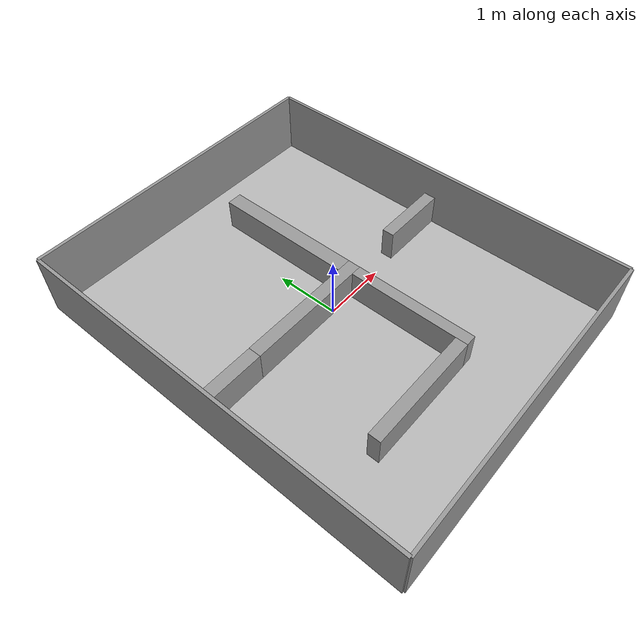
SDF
<sdf version="1.7">
 <world name="indoor_world">
  <light name="sun" type="directional">
   <pose>0 0 10 0 -0 0</pose>
   <diffuse>0.8 0.8 0.8 1</diffuse>
   <specular>0.2 0.2 0.2 1</specular>
   <attenuation>
    <range>1000</range>
    <constant>0.9</constant>
    <linear>0.01</linear>
    <quadratic>0.001</quadratic>
   </attenuation>
   <direction>-0.5 0.1 -0.9</direction>
   <spot><inner_angle>0</inner_angle><outer_angle>0</outer_angle><falloff>0</falloff></spot>
  </light>
  <model name="ground_plane">
   <static>1</static>
   <link name="link">
    <collision name="collision">
     <geometry><plane><normal>0 0 1</normal><size>100 100</size></plane></geometry>
     <surface>
      <contact><collide_bitmask>65535</collide_bitmask></contact>
      <friction><ode><mu>100</mu><mu2>50</mu2></ode></friction>
     </surface>
    </collision>
    <visual name="visual">
     <cast_shadows>0</cast_shadows>
     <geometry><box><size>5.0 6.2250000000000005 .01</size></box></geometry>
     <material>
      <script>
       <uri>/home/dongyanqi/catkin_ws/src/simulator_gazebo/materials/scripts/indoor_region_map.material</uri>
       <name>GroundPlane/Image/indoor</name>
      </script>
     </material>
    </visual>
   </link>
  </model>
  <gravity>0 0 -9.8</gravity>
  <magnetic_field>6e-06 2.3e-05 -4.2e-05</magnetic_field>
  <atmosphere type="adiabatic"/>
  <physics type="ode">
   <max_step_size>0.001</max_step_size>
   <real_time_factor>1</real_time_factor>
   <real_time_update_rate>1000</real_time_update_rate>
  </physics>
  <scene><ambient>0.4 0.4 0.4 1</ambient><background>0.7 0.7 0.7 1</background><shadows>1</shadows></scene>
  <spherical_coordinates>
   <surface_model>EARTH_WGS84</surface_model>
   <latitude_deg>0</latitude_deg>
   <longitude_deg>0</longitude_deg>
   <elevation>0</elevation>
   <heading_deg>0</heading_deg>
  </spherical_coordinates>
  <model name="Box_0">
   <pose>1.9558242236918424 0.09559843669953301 0 0 -0 0</pose>
   <link name="Box_0_link">
    <collision name="Box_0_Collision">
     <pose>0 0 0.25 0 -0 0</pose>
     <geometry><box><size>1.1262825659119209 0.1884352914877021 0.5</size></box></geometry>
    </collision>
    <visual name="Box_0_Visual">
     <pose>0 0 0.25 0 -0 0</pose>
     <geometry><box><size>1.1262825659119209 0.1884352914877021 0.5</size></box></geometry>
     <material>
      <script><uri>file://media/materials/scripts/gazebo.material</uri><name>Gazebo/Grey</name></script>
      <ambient>1 1 1 1</ambient>
     </material>
     <meta><layer>0</layer></meta>
    </visual>
    <inertial>
     <inertia><ixx>1</ixx><ixy>0</ixy><ixz>0</ixz><iyy>1</iyy><iyz>0</iyz><izz>1</izz></inertia>
     <mass>1</mass>
    </inertial>
   </link>
  </model>
  <model name="Box_1">
   <pose>-1.991682797772639 0.07175921054845354 0 0 -0 0</pose>
   <link name="Box_1_link">
    <collision name="Box_1_Collision">
     <pose>0 0 0.25 0 -0 0</pose>
     <geometry><box><size>1.0136884734775906 0.20075315663516502 0.5</size></box></geometry>
    </collision>
    <visual name="Box_1_Visual">
     <pose>0 0 0.25 0 -0 0</pose>
     <geometry><box><size>1.0136884734775906 0.20075315663516502 0.5</size></box></geometry>
     <material>
      <script><uri>file://media/materials/scripts/gazebo.material</uri><name>Gazebo/Grey</name></script>
      <ambient>1 1 1 1</ambient>
     </material>
     <meta><layer>0</layer></meta>
    </visual>
    <inertial>
     <inertia><ixx>1</ixx><ixy>0</ixy><ixz>0</ixz><iyy>1</iyy><iyz>0</iyz><izz>1</izz></inertia>
     <mass>1</mass>
    </inertial>
   </link>
  </model>
  <model name="Box_2">
   <pose>-0.5381552394130752 -1.8770533681469084 0 0 -0 0</pose>
   <link name="Box_2_link">
    <collision name="Box_2_Collision">
     <pose>0 0 0.25 0 -0 0</pose>
     <geometry><box><size>1.8644889801038622 0.1893969427866784 0.5</size></box></geometry>
    </collision>
    <visual name="Box_2_Visual">
     <pose>0 0 0.25 0 -0 0</pose>
     <geometry><box><size>1.8644889801038622 0.1893969427866784 0.5</size></box></geometry>
     <material>
      <script><uri>file://media/materials/scripts/gazebo.material</uri><name>Gazebo/Grey</name></script>
      <ambient>1 1 1 1</ambient>
     </material>
     <meta><layer>0</layer></meta>
    </visual>
    <inertial>
     <inertia><ixx>1</ixx><ixy>0</ixy><ixz>0</ixz><iyy>1</iyy><iyz>0</iyz><izz>1</izz></inertia>
     <mass>1</mass>
    </inertial>
   </link>
  </model>
  <model name="Box_3">
   <pose>0.4468195588797693 1.290231927140537 0 0 -0 0</pose>
   <link name="Box_3_link">
    <collision name="Box_3_Collision">
     <pose>0 0 0.25 0 -0 0</pose>
     <geometry><box><size>0.2401736429472714 2.231465515926915 0.5</size></box></geometry>
    </collision>
    <visual name="Box_3_Visual">
     <pose>0 0 0.25 0 -0 0</pose>
     <geometry><box><size>0.2401736429472714 2.231465515926915 0.5</size></box></geometry>
     <material>
      <script><uri>file://media/materials/scripts/gazebo.material</uri><name>Gazebo/Grey</name></script>
      <ambient>1 1 1 1</ambient>
     </material>
     <meta><layer>0</layer></meta>
    </visual>
    <inertial>
     <inertia><ixx>1</ixx><ixy>0</ixy><ixz>0</ixz><iyy>1</iyy><iyz>0</iyz><izz>1</izz></inertia>
     <mass>1</mass>
    </inertial>
   </link>
  </model>
  <model name="Box_4">
   <pose>0.48060714079808414 -0.9969736662665807 0 0 -0 0</pose>
   <link name="Box_4_link">
    <collision name="Box_4_Collision">
     <pose>0 0 0.25 0 -0 0</pose>
     <geometry><box><size>0.1772994670946666 1.944699192528775 0.5</size></box></geometry>
    </collision>
    <visual name="Box_4_Visual">
     <pose>0 0 0.25 0 -0 0</pose>
     <geometry><box><size>0.1772994670946666 1.944699192528775 0.5</size></box></geometry>
     <material>
      <script><uri>file://media/materials/scripts/gazebo.material</uri><name>Gazebo/Grey</name></script>
      <ambient>1 1 1 1</ambient>
     </material>
     <meta><layer>0</layer></meta>
    </visual>
    <inertial>
     <inertia><ixx>1</ixx><ixy>0</ixy><ixz>0</ixz><iyy>1</iyy><iyz>0</iyz><izz>1</izz></inertia>
     <mass>1</mass>
    </inertial>
   </link>
  </model>
  <model name="Box_5">
   <pose>-0.45896609034021907 0.07375585943192156 0 0 -0 0</pose>
   <link name="Box_5_link">
    <collision name="Box_5_Collision">
     <pose>0 0 0.25 0 -0 0</pose>
     <geometry><box><size>2.0521822425950655 0.2021059881235554 0.5</size></box></geometry>
    </collision>
    <visual name="Box_5_Visual">
     <pose>0 0 0.25 0 -0 0</pose>
     <geometry><box><size>2.0521822425950655 0.2021059881235554 0.5</size></box></geometry>
     <material>
      <script><uri>file://media/materials/scripts/gazebo.material</uri><name>Gazebo/Grey</name></script>
      <ambient>1 1 1 1</ambient>
     </material>
     <meta><layer>0</layer></meta>
    </visual>
    <inertial>
     <inertia><ixx>1</ixx><ixy>0</ixy><ixz>0</ixz><iyy>1</iyy><iyz>0</iyz><izz>1</izz></inertia>
     <mass>1</mass>
    </inertial>
   </link>
  </model>
  <model name="Boundary_0">
   <pose>0.004052076315073538 -3.1073631242369673 0 0 -0 0</pose>
   <link name="Boundary_0_link">
    <collision name="Boundary_0_Collision">
     <pose>0 0 0.5 0 -0 0</pose>
     <geometry><box><size>5.0115810831428185 0.05 1</size></box></geometry>
    </collision>
    <visual name="Boundary_0_Visual">
     <pose>0 0 0.5 0 -0 0</pose>
     <geometry><box><size>5.0115810831428185 0.05 1</size></box></geometry>
     <material>
      <script><uri>file://media/materials/scripts/gazebo.material</uri><name>Gazebo/Grey</name></script>
      <ambient>1 1 1 1</ambient>
     </material>
     <meta><layer>0</layer></meta>
    </visual>
    <inertial>
     <inertia><ixx>1</ixx><ixy>0</ixy><ixz>0</ixz><iyy>1</iyy><iyz>0</iyz><izz>1</izz></inertia>
     <mass>1</mass>
    </inertial>
   </link>
  </model>
  <model name="Boundary_1">
   <pose>2.5098426178864828 -0.0004284174203583735 0 0 -0 0</pose>
   <link name="Boundary_1_link">
    <collision name="Boundary_1_Collision">
     <pose>0 0 0.5 0 -0 0</pose>
     <geometry><box><size>0.05 6.213869413633217 1</size></box></geometry>
    </collision>
    <visual name="Boundary_1_Visual">
     <pose>0 0 0.5 0 -0 0</pose>
     <geometry><box><size>0.05 6.213869413633217 1</size></box></geometry>
     <material>
      <script><uri>file://media/materials/scripts/gazebo.material</uri><name>Gazebo/Grey</name></script>
      <ambient>1 1 1 1</ambient>
     </material>
     <meta><layer>0</layer></meta>
    </visual>
    <inertial>
     <inertia><ixx>1</ixx><ixy>0</ixy><ixz>0</ixz><iyy>1</iyy><iyz>0</iyz><izz>1</izz></inertia>
     <mass>1</mass>
    </inertial>
   </link>
  </model>
  <model name="Boundary_2">
   <pose>0.004052076315073538 3.1065062893962505 0 0 -0 0</pose>
   <link name="Boundary_2_link">
    <collision name="Boundary_2_Collision">
     <pose>0 0 0.5 0 -0 0</pose>
     <geometry><box><size>5.0115810831428185 0.05 1</size></box></geometry>
    </collision>
    <visual name="Boundary_2_Visual">
     <pose>0 0 0.5 0 -0 0</pose>
     <geometry><box><size>5.0115810831428185 0.05 1</size></box></geometry>
     <material>
      <script><uri>file://media/materials/scripts/gazebo.material</uri><name>Gazebo/Grey</name></script>
      <ambient>1 1 1 1</ambient>
     </material>
     <meta><layer>0</layer></meta>
    </visual>
    <inertial>
     <inertia><ixx>1</ixx><ixy>0</ixy><ixz>0</ixz><iyy>1</iyy><iyz>0</iyz><izz>1</izz></inertia>
     <mass>1</mass>
    </inertial>
   </link>
  </model>
  <model name="Boundary_3">
   <pose>-2.5017384652563357 -0.0004284174203583735 0 0 -0 0</pose>
   <link name="Boundary_3_link">
    <collision name="Boundary_3_Collision">
     <pose>0 0 0.5 0 -0 0</pose>
     <geometry><box><size>0.05 6.213869413633217 1</size></box></geometry>
    </collision>
    <visual name="Boundary_3_Visual">
     <pose>0 0 0.5 0 -0 0</pose>
     <geometry><box><size>0.05 6.213869413633217 1</size></box></geometry>
     <material>
      <script><uri>file://media/materials/scripts/gazebo.material</uri><name>Gazebo/Grey</name></script>
      <ambient>1 1 1 1</ambient>
     </material>
     <meta><layer>0</layer></meta>
    </visual>
    <inertial>
     <inertia><ixx>1</ixx><ixy>0</ixy><ixz>0</ixz><iyy>1</iyy><iyz>0</iyz><izz>1</izz></inertia>
     <mass>1</mass>
    </inertial>
   </link>
  </model>
 </world>
</sdf>
